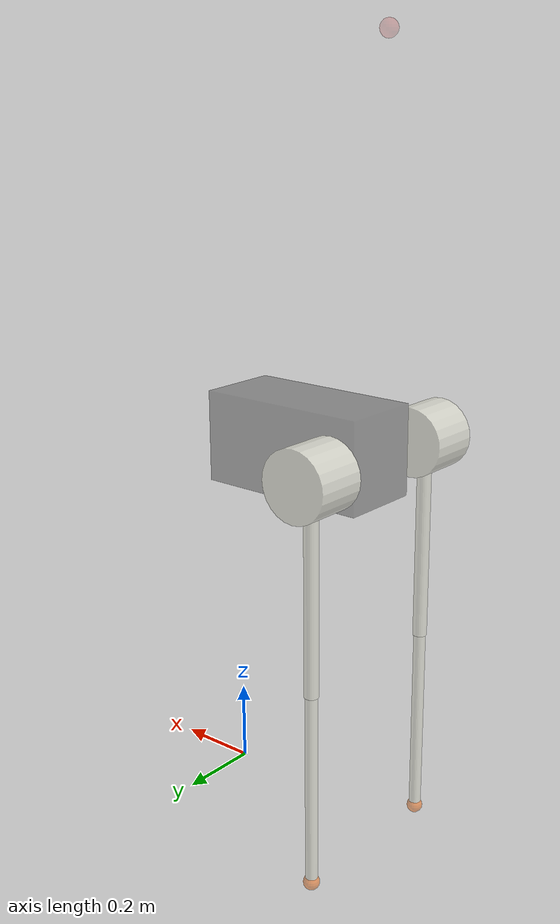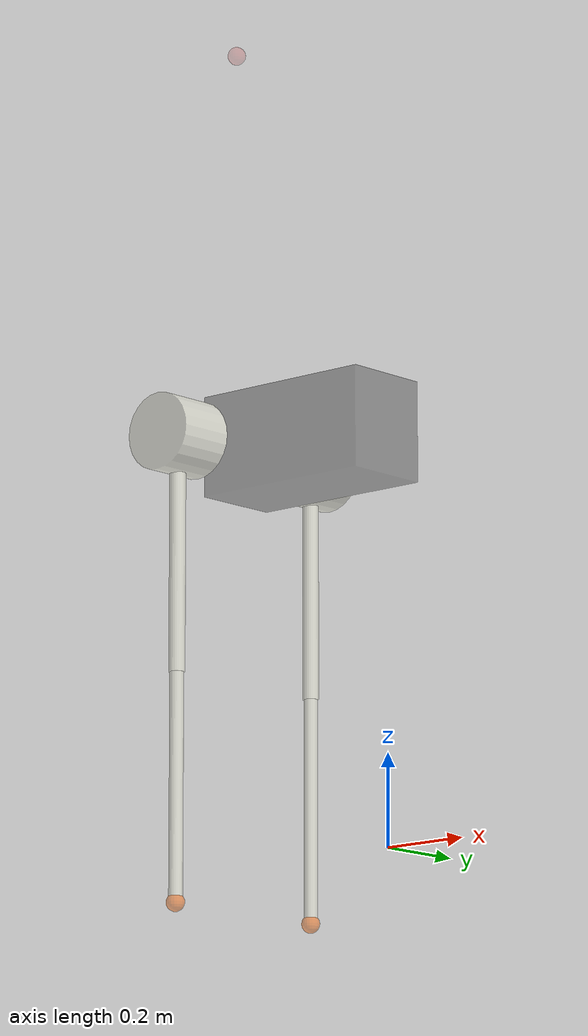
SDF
<?xml version='1.0'?>
<sdf version='1.9'>
  <model name='centaur_control_model'>

  <link name='floating_base'>
    <pose>-0.216 0 0.905 0 0 0</pose>
    <visual name='visual'>
      <pose>-0.216 0 0.905 0 0 0</pose>
      <geometry> <sphere> <radius>0.02</radius> </sphere> </geometry>
      <material>
        <diffuse>0.8 0.1 0.1 0.1</diffuse>
      </material>
    </visual>
  </link>

  <joint name='floating_base_fixed_to_torso' type='fixed'>
    <parent>floating_base</parent>
    <child>torso</child>
  </joint>

  <link name='torso'>
    <pose relative_to='floating_base'>0 0 0 0 0 0</pose>
    <visual name='visual'>
      <pose relative_to='floating_base'>0 0 0 0 0 0</pose>
      <geometry>
        <box> <size>0.432 0.2 0.22</size> </box>
      </geometry>
      <material>
        <diffuse>0.2 0.2 0.2 0.4</diffuse>
      </material>
    </visual>
    <inertial>
      <mass>20.0</mass>
      <inertia> <ixx>0.1473</ixx> <iyy>0.3917</iyy> <izz>0.3777</izz> </inertia>
    </inertial>
    <collision name='collision'>
      <pose relative_to='floating_base'>0 0 0 0 0 0</pose>
      <geometry>
        <box> <size>0.432 0.2 0.22</size> </box>
      </geometry>
    </collision>
  </link>

  <frame name='left_abad_joint_frame' attached_to='torso'>
    <pose relative_to='torso'>-0.048 0.173 0 0 0 0</pose>
  </frame>

  <joint name='left_abad_joint' type='revolute'>
    <pose relative_to='left_abad_joint_frame'>0 0 0 0 0 0</pose>
    <parent>torso</parent>
    <child>left_hip_from_abad</child>
    <axis>
      <xyz>1 0 0</xyz>
      <limit>
        <lower>-0.8028514559173915</lower>
        <upper>0.8028514559173915</upper>
        <effort>140.0</effort>
        <velocity>93.0</velocity>
      </limit>
    </axis>
  </joint>

  <link name='left_hip_from_abad'>
    <pose relative_to='left_abad_joint_frame'>0 0 0 0 0 0</pose>
    <visual name='visual'>
      <pose relative_to='left_abad_joint_frame'>-0.14 0.04 0 1.5707963267948966 0 0</pose>
      <geometry>
        <cylinder> <length>0.127</length> <radius>0.084</radius> </cylinder>
      </geometry>
      <material>
        <diffuse>0.913725490196 0.913725490196 0.847058823529 0.6</diffuse>
      </material>
    </visual>
    <collision name='collision'>
      <pose relative_to='left_abad_joint_frame'>-0.14 0 0 1.5707963267948966 0 0</pose>
      <geometry>
        <cylinder> <length>0.127</length> <radius>0.084</radius> </cylinder>
      </geometry>
    </collision>
    <inertial>
      <pose>-0.14 0 0 1.5707963267948966 0 0</pose>
      <mass>1.7</mass>
      <inertia> <ixx>0.0053</ixx> <iyy>0.0053</iyy> <izz>0.006</izz> </inertia>
    </inertial>
  </link>

  <frame name='left_hip_joint_frame' attached_to='left_hip_from_abad'>
    <pose relative_to='left_hip_from_abad'>-0.14 0.04 0 0 0 0</pose>
  </frame>

  <joint name='left_hip_joint' type='revolute'>
    <pose relative_to='left_hip_joint_frame'>0 0 0 0 0 0</pose>
    <parent>left_hip_from_abad</parent>
    <child>left_thigh_from_hip</child>
    <axis>
      <xyz>0 1 0</xyz>
      <limit>
        <lower>-0.8028514559173915</lower>
        <upper>0.8028514559173915</upper>
        <effort>140.0</effort>
        <velocity>93.0</velocity>
      </limit>
    </axis>
  </joint>

  <link name='left_thigh_from_hip'>
    <pose relative_to='left_hip_joint_frame'>0 0 0 0 0 0</pose>
    <visual name='visual'>
      <pose relative_to='left_hip_joint_frame'>0 0 -0.256 0 0 0</pose>
      <geometry>
        <cylinder> <length>0.512</length> <radius>0.0175</radius> </cylinder>
      </geometry>
      <material>
        <diffuse>0.913725490196 0.913725490196 0.847058823529 0.6</diffuse>
      </material>
    </visual>
    <collision name='collision'>
      <pose relative_to='left_hip_joint_frame'>0 0 -0.256 0 0 0</pose>
      <geometry>
        <cylinder> <length>0.512</length> <radius>0.0175</radius> </cylinder>
      </geometry>
    </collision>
    <inertial>
      <pose>0 0 -0.256 0 0 0</pose>
      <mass>0.5</mass>
      <inertia> <ixx>0.0141</ixx> <iyy>0.0141</iyy> <izz>0.0001</izz> </inertia>
    </inertial>
  </link>

  <frame name='left_knee_joint_frame' attached_to='left_thigh_from_hip'>
    <pose relative_to='left_thigh_from_hip'>0 0 -0.512 0 0 0</pose>
  </frame>

  <joint name='left_knee_joint' type='revolute'>
    <pose relative_to='left_knee_joint_frame'>0 0 0 0 0 0</pose>
    <parent>left_thigh_from_hip</parent>
    <child>left_shank_from_knee</child>
    <axis>
      <xyz>0 1 0</xyz>
      <limit>
        <lower>-1.5</lower>
        <upper>0.0</upper>
        <effort>140.0</effort>
        <velocity>93.0</velocity>
      </limit>
    </axis>
  </joint>

  <link name='left_shank_from_knee'>
    <pose relative_to='left_knee_joint_frame'>0 0 0 0 0 0</pose>
    <visual name='visual'>
      <pose relative_to='left_knee_joint_frame'>0 0 -0.24 0 0 0</pose>
      <geometry>
        <cylinder> <length>0.48</length> <radius>0.015</radius> </cylinder>
      </geometry>
      <material>
        <diffuse>0.913725490196 0.913725490196 0.847058823529 0.6</diffuse>
      </material>
    </visual>
    <collision name='collision'>
      <pose relative_to='left_knee_joint_frame'>0 0 -0.24 0 0 0</pose>
      <geometry>
        <cylinder> <length>0.48</length> <radius>0.015</radius> </cylinder>
      </geometry>
    </collision>
    <inertial>
      <pose>0 0 -0.24 0 0 0</pose>
      <mass>0.5</mass>
      <inertia> <ixx>0.0083</ixx> <iyy>0.0083</iyy> <izz>0.0001</izz> </inertia>
    </inertial>
  </link>

  <frame name='left_foot_joint_frame' attached_to='left_shank_from_knee'>
    <pose relative_to='left_shank_from_knee'>0 0 -0.49 0 0 0</pose>
  </frame>

  <joint name='left_foot_fixed_joint' type='fixed'>
    <pose relative_to='left_foot_joint_frame'>0 0 0 0 0 0</pose>
    <parent>left_shank_from_knee</parent>
    <child>left_foot</child>
  </joint>

  <link name='left_foot'>
    <pose relative_to='left_foot_joint_frame'>0 0 0 0 0 0</pose>
    <visual name='visual'>
      <pose relative_to='left_foot_joint_frame'>0 0 0 0 0 0</pose>
      <geometry>
        <sphere> <radius>0.02</radius> </sphere>
      </geometry>
      <material>
        <diffuse>1.0 0.423529411765 0.0392156862745 0.5</diffuse>
      </material>
    </visual>
    <collision name='collision'>
      <pose relative_to='left_foot_joint_frame'>0 0 0 0 0 0</pose>
      <geometry>
        <sphere> <radius>0.02</radius> </sphere>
      </geometry>
    </collision>
  </link>

<!-- right side -->

  <frame name='right_abad_joint_frame' attached_to='torso'>
    <pose relative_to='torso'>-0.048 -0.173 0 0 0 0</pose>
  </frame>

  <joint name='right_abad_joint' type='revolute'>
    <pose relative_to='right_abad_joint_frame'>0 0 0 0 0 0</pose>
    <parent>torso</parent>
    <child>right_hip_from_abad</child>
    <axis>
      <xyz>1 0 0</xyz>
      <limit>
        <lower>-0.8028514559173915</lower>
        <upper>0.8028514559173915</upper>
        <effort>140.0</effort>
        <velocity>93.0</velocity>
      </limit>
    </axis>
  </joint>

  <link name='right_hip_from_abad'>
    <pose relative_to='right_abad_joint_frame'>0 0 0 0 0 0</pose>
    <visual name='visual'>
      <pose relative_to='right_abad_joint_frame'>-0.14 -0.04 0 1.5707963267948966 0 0</pose>
      <geometry>
        <cylinder> <length>0.127</length> <radius>0.084</radius> </cylinder>
      </geometry>
      <material>
        <diffuse>0.913725490196 0.913725490196 0.847058823529 0.6</diffuse>
      </material>
    </visual>
    <collision name='collision'>
      <pose relative_to='right_abad_joint_frame'>-0.14 0 0 1.5707963267948966 0 0</pose>
      <geometry>
        <cylinder> <length>0.127</length> <radius>0.084</radius> </cylinder>
      </geometry>
    </collision>
    <inertial>
      <pose>-0.14 0 0 1.5707963267948966 0 0</pose>
      <mass>1.7</mass>
      <inertia> <ixx>0.0053</ixx> <iyy>0.0053</iyy> <izz>0.006</izz> </inertia>
    </inertial>
  </link>

  <frame name='right_hip_joint_frame' attached_to='right_hip_from_abad'>
    <pose relative_to='right_hip_from_abad'>-0.14 -0.04 0 0 0 0</pose>
  </frame>

  <joint name='right_hip_joint' type='revolute'>
    <pose relative_to='right_hip_joint_frame'>0 0 0 0 0 0</pose>
    <parent>right_hip_from_abad</parent>
    <child>right_thigh_from_hip</child>
    <axis>
      <xyz>0 1 0</xyz>
      <limit>
        <lower>-0.8028514559173915</lower>
        <upper>0.8028514559173915</upper>
        <effort>140.0</effort>
        <velocity>93.0</velocity>
      </limit>
    </axis>
  </joint>

  <link name='right_thigh_from_hip'>
    <pose relative_to='right_hip_joint_frame'>0 0 0 0 0 0</pose>
    <visual name='visual'>
      <pose relative_to='right_hip_joint_frame'>0 0 -0.256 0 0 0</pose>
      <geometry>
        <cylinder> <length>0.512</length> <radius>0.0175</radius> </cylinder>
      </geometry>
      <material>
        <diffuse>0.913725490196 0.913725490196 0.847058823529 0.6</diffuse>
      </material>
    </visual>
    <collision name='collision'>
      <pose relative_to='right_hip_joint_frame'>0 0 -0.256 0 0 0</pose>
      <geometry>
        <cylinder> <length>0.512</length> <radius>0.0175</radius> </cylinder>
      </geometry>
    </collision>
    <inertial>
      <pose>0 0 -0.256 0 0 0</pose>
      <mass>0.5</mass>
      <inertia> <ixx>0.0141</ixx> <iyy>0.0141</iyy> <izz>0.0001</izz> </inertia>
    </inertial>
  </link>

  <frame name='right_knee_joint_frame' attached_to='right_thigh_from_hip'>
    <pose relative_to='right_thigh_from_hip'>0 0 -0.512 0 0 0</pose>
  </frame>

  <joint name='right_knee_joint' type='revolute'>
    <pose relative_to='right_knee_joint_frame'>0 0 0 0 0 0</pose>
    <parent>right_thigh_from_hip</parent>
    <child>right_shank_from_knee</child>
    <axis>
      <xyz>0 1 0</xyz>
      <limit>
        <lower>-1.5</lower>
        <upper>0.0</upper>
        <effort>140.0</effort>
        <velocity>93.0</velocity>
      </limit>
    </axis>
  </joint>

  <link name='right_shank_from_knee'>
    <pose relative_to='right_knee_joint_frame'>0 0 0 0 0 0</pose>
    <visual name='visual'>
      <pose relative_to='right_knee_joint_frame'>0 0 -0.24 0 0 0</pose>
      <geometry>
        <cylinder> <length>0.48</length> <radius>0.015</radius> </cylinder>
      </geometry>
      <material>
        <diffuse>0.913725490196 0.913725490196 0.847058823529 0.6</diffuse>
      </material>
    </visual>
    <collision name='collision'>
      <pose relative_to='right_knee_joint_frame'>0 0 -0.24 0 0 0</pose>
      <geometry>
        <cylinder> <length>0.48</length> <radius>0.015</radius> </cylinder>
      </geometry>
    </collision>
    <inertial>
      <pose>0 0 -0.24 0 0 0</pose>
      <mass>0.5</mass>
      <inertia> <ixx>0.0083</ixx> <iyy>0.0083</iyy> <izz>0.0001</izz> </inertia>
    </inertial>
  </link>

  <frame name='right_foot_joint_frame' attached_to='right_shank_from_knee'>
    <pose relative_to='right_shank_from_knee'>0 0 -0.49 0 0 0</pose>
  </frame>

  <joint name='right_foot_fixed_joint' type='fixed'>
    <pose relative_to='right_foot_joint_frame'>0 0 0 0 0 0</pose>
    <parent>right_shank_from_knee</parent>
    <child>right_foot</child>
  </joint>

  <link name='right_foot'>
    <pose relative_to='right_foot_joint_frame'>0 0 0 0 0 0</pose>
    <visual name='visual'>
      <pose relative_to='right_foot_joint_frame'>0 0 0 0 0 0</pose>
      <geometry>
        <sphere> <radius>0.02</radius> </sphere>
      </geometry>
      <material>
        <diffuse>1.0 0.423529411765 0.0392156862745 0.5</diffuse>
      </material>
    </visual>
    <collision name='collision'>
      <pose relative_to='right_foot_joint_frame'>0 0 0 0 0 0</pose>
      <geometry>
        <sphere> <radius>0.02</radius> </sphere>
      </geometry>
    </collision>
  </link>

  </model>

</sdf>
